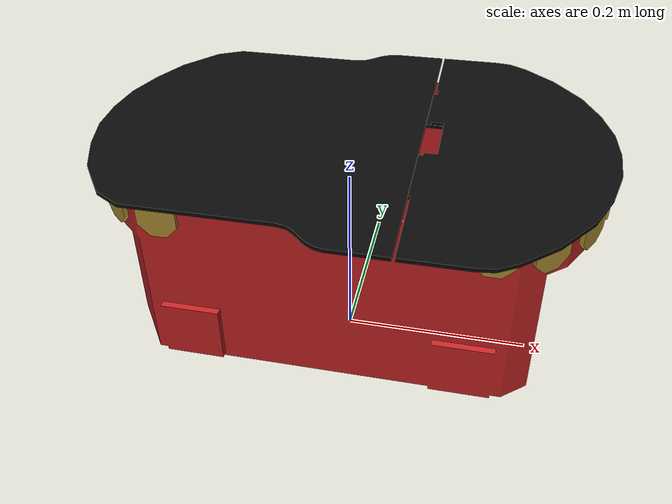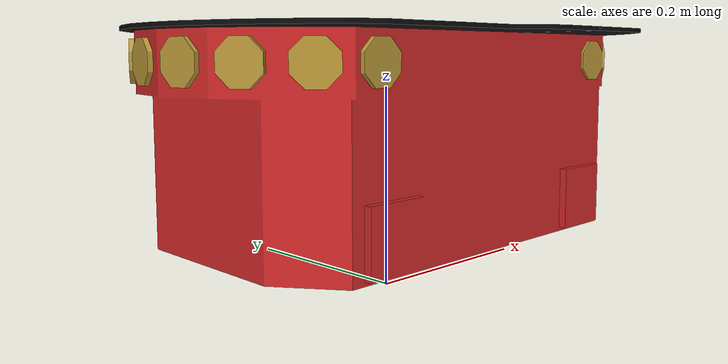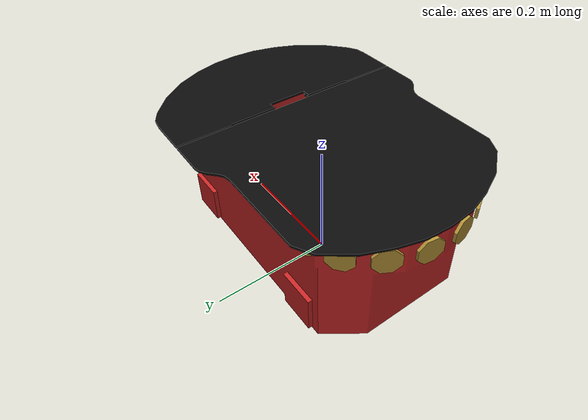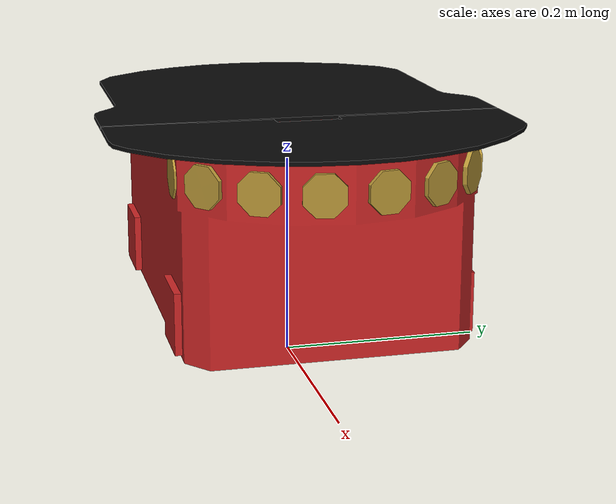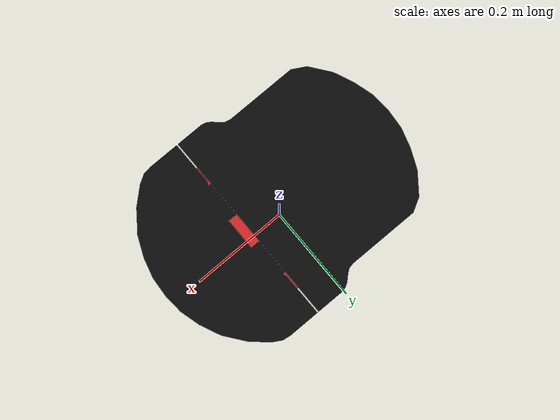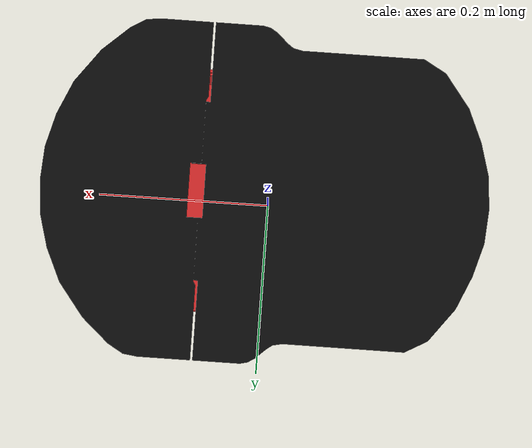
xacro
<?xml version="1.0"?>

<robot xmlns:sensor="http://playerstage.sourceforge.net/gazebo/xmlschema/#sensor"
       xmlns:controller="http://playerstage.sourceforge.net/gazebo/xmlschema/#controller"
       xmlns:interface="http://playerstage.sourceforge.net/gazebo/xmlschema/#interface"
       xmlns:xacro="http://www.ros.org/wiki/xacro">

	<link name="base_link"/>

<!-- Chassis -->
	<link name="chassis">
		<inertial>
			<mass value="20.0"/>
			<origin xyz="0 0 -0.090"/>
			<inertia ixx="0.3338" ixy="0.0" ixz="0.0"
				 iyy="0.4783" iyz="0.0"
				 izz="0.3338"/>
		</inertial>
		<visual>
			<origin xyz="0 0 0.0" rpy="0 0 0"/>
			<geometry name="pioneer_geom">
				<mesh filename="package://p3at_tutorial/meshes/chassis.dae"/>
			</geometry>
			<material name="ChassisRed" />
		</visual>
		<collision>
			<origin xyz="0 0 0.0" rpy="0 0 0"/>
				<geometry>
					<mesh filename="package://p3at_tutorial/meshes/chassis.dae"/>
				</geometry>
		</collision>
	</link>
	<gazebo reference="chassis">
		<material value="Gazebo/Red"/>
	</gazebo>
	<joint name="base_chassis_joint" type="fixed">
		<origin xyz="0.00 0 0.177" rpy="0 0 0"/>
		<parent link="base_link"/>
		<child link="chassis"/>
	</joint>

<!-- Top -->
	<link name="top_plate">
		<inertial>
			<mass value="0.1"/>
			<origin xyz="-0.025 0 -0.223"/>
			<inertia ixx="1.0" ixy="0.0" ixz="0.0"
				 iyy="1.0" iyz="0.0"
 				izz="1.0"/>
		</inertial>
		<visual>
			<origin xyz="0 0 0" rpy="0 0 0"/>
			<geometry name="pioneer_geom">
				<mesh filename="package://p3at_tutorial/meshes/top.dae"/>
			</geometry>
			<material name="TopBlack">
					<color rgba="0.038 0.038 0.038 1.0"/>
			</material>
		</visual>
		<collision>
			<origin xyz="0 0 0" rpy="0 0 0"/>
			<geometry>
				<box size="0 0 0"/>
			</geometry>
		</collision>
	</link>
	<gazebo reference="top_plate">
		<material value="Gazebo/Black"/>
	</gazebo>

	<joint name="chassis_top_joint" type="fixed">
		<origin xyz="0.043 0 0.254" rpy="0 0 0"/>
		<parent link="base_link"/>
		<child link="top_plate"/>
	</joint>
<!-- Front + Back Sonar -->
	<link name="front_sonar">
		<inertial>
			<mass value="0.1"/>
			<origin xyz="0 0 0"/>
			<inertia ixx="1.0" ixy="0.0" ixz="0.0"
				 iyy="1.0" iyz="0.0" izz="1.0"/>
		</inertial>
		<visual name="front_sonar_visual">
			<origin xyz="0 0 0" rpy="0 0 0"/>
			<geometry name="pioneer_geom">
				<mesh filename="package://p3at_tutorial/meshes/front_sonar.dae"/>
			</geometry>
			<material name="SonarYellow">
				<color rgba="0.715 0.583 0.210 1.0"/>
			</material>
		</visual>
		<collision>
			<origin xyz="0 0 0" rpy="0 0 0"/>
			<geometry>
				<box size="0 0 0"/>
			</geometry>
		</collision>
	</link>
	<gazebo reference="front_sonar">
		<material value="Gazebo/Yellow"/>
	</gazebo>

	<joint name="base_front_joint" type="fixed">
		<origin xyz="0.193 0 0.226" rpy="0 0 0"/>
		<parent link="base_link"/>
		<child link="front_sonar"/>
	</joint>

	<link name="back_sonar">
		<inertial>
			<mass value="0.1"/>
			<origin xyz="0 0 0"/>
			<inertia ixx="1.0" ixy="0.0" ixz="0.0"
				 iyy="1.0" iyz="0.0" izz="1.0"/>
		</inertial>
		<visual name="back_sonar_visual">
			<origin xyz="0 0 0" rpy="0 0 0"/>
			<geometry name="pioneer_geom">
				<mesh filename="package://p3at_tutorial/meshes/back_sonar.dae"/>
			</geometry>
			<material name="SonarYellow">
				<color rgba="0.715 0.583 0.210 1.0"/>
			</material>
		</visual>
		<collision>
			<origin xyz="0 0 0" rpy="0 0 0"/>
			<geometry>
				<box size="0 0 0"/>
			</geometry>
		</collision>
	</link>
	<gazebo reference="back_sonar">
		<material value="Gazebo/Yellow"/>
	</gazebo>

	<joint name="base_back_joint" type="fixed">
		<origin xyz="-0.193 0 0.226" rpy="0 0 0"/>
		<parent link="base_link"/>
		<child link="back_sonar"/>
	</joint>

<!-- Front Axles + Wheels + Hubcaps -->
<xacro:macro name="p3at_front" params="suffix reflect">
	<link name="p3at_front_${suffix}_axle">
		<inertial>
			<mass value="0.1"/>
			<origin xyz="0 0 0"/>
			<inertia ixx="1.0" ixy="0.0" ixz="0.0"
				 iyy="1.0" iyz="0.0" izz="1.0"/>
  	 	</inertial>
	<visual>
		<origin xyz="0 0 0" rpy="0 0 0"/>
		<geometry name="pioneer_geom">
			<mesh filename="package://p3at_tutorial/meshes/axle.dae"/>
		</geometry>
		<material name="AxleGrey">
			<color rgba="0.5 0.5 0.5 1"/>
		</material>
	</visual>
	<collision>
		<origin xyz="0 0 0" rpy="0 0 0"/>
		<geometry>
			<box size="0 0 0"/>
		</geometry>
	</collision>
	</link>
	<gazebo reference="p3at_front_${suffix}_axle">
		<material value="Gazebo/Grey"/>
	</gazebo>

	<joint name="base_front_${suffix}_axle_joint" type="fixed">
		<origin xyz="0.135 ${reflect*0.156} 0.111" rpy="0 0 0"/>
		<parent link="base_link"/>
		<child link="p3at_front_${suffix}_axle"/>
	</joint>

	<link name="p3at_front_${suffix}_hub">
		<inertial>
			<mass value="0.1"/>
			<origin xyz="0 0 0"/>
			<inertia ixx="1.0" ixy="0.0" ixz="0.0"
				 iyy="1.0" iyz="0.0" izz="1.0"/>
  	 	</inertial>
	<visual>
		<origin xyz="0 0 0" rpy="0 0 0"/>
		<geometry name="pioneer_geom">
			<mesh filename="package://p3at_tutorial/meshes/${suffix}_hubcap.dae"/>
		</geometry>
		<material name="HubcapYellow">
			<color rgba="1.0 0.811 0.151 1.0"/>
		</material>
	</visual>
	<collision>
		<origin xyz="0 0 0" rpy="0 0 0"/>
		<geometry>
			<box size="0 0 0"/>
		</geometry>
	</collision>
	</link>
	<gazebo reference="p3at_front_${suffix}_hub">
		<material value="Gazebo/Yellow"/>
	</gazebo>

	<joint name="base_front_${suffix}_hub_joint" type="fixed">
		<origin xyz="0 ${reflect*0.041} 0" rpy="0 0 0"/>
		<parent link="p3at_front_${suffix}_axle"/>
		<child link="p3at_front_${suffix}_hub"/>
	</joint>

	<link name="p3at_front_${suffix}_wheel">
		<inertial>
			<mass value="0.5"/>
			<origin xyz="0 0 0"/>
			<inertia ixx="0.012411765597" ixy="0" ixz="0"
         iyy="0.015218160428" iyz="0" izz="0.011763977943"/>
      </inertial>
	<visual>
		<origin xyz="0 0 0" rpy="0 0 0"/>
		<geometry name="pioneer_geom">
			<mesh filename="package://p3at_tutorial/meshes/wheel.dae"/>
		</geometry>
		<material name="WheelBlack">
			<color rgba="0.117 0.117 0.117 1"/>
		</material>
	</visual>
	<collision>
		<origin xyz="0 0 0" rpy="${-3.1415927/2} 0 0"/>
		<geometry>
	    <!--mesh filename="package://p3at_tutorial/meshes/wheel.dae"/-->
	    <cylinder radius="0.110" length="0.035"/>
		</geometry>
	</collision>
	</link>
	<gazebo reference="p3at_front_${suffix}_wheel">
		<material value="Gazebo/Black"/>
	</gazebo>

	<joint name="p3at_front_${suffix}_wheel_joint" type="continuous">
  	<axis xyz="0 1 0"/>
    <anchor xyz="0 0 0"/>
    <limit effort="100" velocity="100" />
    <joint_properties damping="0.7"/>
		<origin xyz="0 0 0" rpy="0 0 0"/>
		<parent link="p3at_front_${suffix}_hub"/>
		<child link="p3at_front_${suffix}_wheel"/>
	</joint>
</xacro:macro>
<!-- Back Axles + Wheels + Hubcaps -->
<xacro:macro name="p3at_back" params="suffix reflect">
	<link name="p3at_back_${suffix}_axle">
		<inertial>
			<mass value="0.1"/>
			<origin xyz="0 0 0"/>
			<inertia ixx="1.0" ixy="0.0" ixz="0.0"
				 iyy="1.0" iyz="0.0" izz="1.0"/>
  	 	</inertial>
	<visual>
		<origin xyz="0 0 0" rpy="0 0 0"/>
		<geometry name="pioneer_geom">
			<mesh filename="package://p3at_tutorial/meshes/axle.dae"/>
		</geometry>
		<material name="AxleGrey">
			<color rgba="0.5 0.5 0.5 1"/>
		</material>
	</visual>
	<collision>
		<origin xyz="0 0 0" rpy="0 0 0"/>
		<geometry>
			<mesh filename="package://p3at_tutorial/meshes/axle.dae"/>
		</geometry>
	</collision>
	</link>
	<gazebo reference="p3at_back_${suffix}_axle">
		<material value="Gazebo/Grey"/>
	</gazebo>

	<joint name="bp3at_back_${suffix}_axle_joint" type="fixed">
		<origin xyz="-0.134 ${reflect*0.156} 0.111" rpy="0 0 0"/>
		<parent link="base_link"/>
		<child link="p3at_back_${suffix}_axle"/>
	</joint>

	<link name="p3at_back_${suffix}_hub">
		<inertial>
			<mass value="0.1"/>
			<origin xyz="0 0 0"/>
			<inertia ixx="1.0" ixy="0.0" ixz="0.0"
				 iyy="1.0" iyz="0.0" izz="1.0"/>
  	 	</inertial>
	<visual>
		<origin xyz="0 0 0" rpy="0 0 0"/>
		<geometry name="pioneer_geom">
			<mesh filename="package://p3at_tutorial/meshes/${suffix}_hubcap.dae"/>
		</geometry>
		<material name="HubcapYellow"/>
	</visual>
	<collision>
		<origin xyz="0 0 0" rpy="0 0 0"/>
		<geometry>
			<mesh filename="package://p3at_tutorial/meshes/${suffix}_hubcap.dae"/>
		</geometry>
	</collision>
	</link>
	<gazebo reference="p3at_back_${suffix}_hub">
		<material value="Gazebo/Yellow"/>
	</gazebo>

	<joint name="p3at_back_${suffix}_hub_joint" type="fixed">
		<origin xyz="-0 ${reflect*0.041} 0" rpy="0 0 0"/>
		<parent link="p3at_back_${suffix}_axle"/>
		<child link="p3at_back_${suffix}_hub"/>
	</joint>

	<link name="p3at_back_${suffix}_wheel">
		<inertial>
			<mass value="0.5"/>
			<origin xyz="0 0 0"/>
			<inertia ixx="0.012411765597" ixy="0" ixz="0"
         iyy="0.015218160428" iyz="0" izz="0.011763977943"/>
      </inertial>
	<visual>
		<origin xyz="0 0 0" rpy="0 0 0"/>
		<geometry name="pioneer_geom">
			<mesh filename="package://p3at_tutorial/meshes/wheel.dae"/>
		</geometry>
		<material name="WheelBlack"/>
	</visual>
	<collision>
		<origin xyz="0 0 0" rpy="${-3.1415927/2} 0 0"/>
		<geometry>
	    <!--mesh filename="package://p3at_tutorial/meshes/wheel.dae"/-->
	    <cylinder radius="0.110" length="0.035"/>
		</geometry>
	</collision>
	</link>
	<gazebo reference="p3at_back_${suffix}_wheel">
		<material value="Gazebo/Black"/>
	</gazebo>

	<joint name="p3at_back_${suffix}_wheel_joint" type="continuous">
	  <axis xyz="0 1 0"/>
    <anchor xyz="0 0 0"/>
    <limit effort="100" velocity="100" />
    <joint_properties damping="0.7"/>
		<origin xyz="0 0 0" rpy="0 0 0"/>
		<parent link="p3at_back_${suffix}_hub"/>
		<child link="p3at_back_${suffix}_wheel"/>
	</joint>

  <gazebo reference="p3at_back_${suffix}_wheel">
    <kp>1000000.0</kp> <!-- kp and kd for rubber -->
    <kd>100.0</kd>
    <mu1>10.0</mu1>
    <mu2>1.0</mu2>
    <fdir1>1 0 0</fdir1> <!-- is this correct? -->
    <maxVel>1.0</maxVel>
    <minDepth>0.00</minDepth>
  </gazebo>

  <gazebo reference="p3at_front_${suffix}_wheel">
    <kp>1000000.0</kp> <!-- kp and kd for rubber -->
    <kd>100.0</kd>
    <mu1>10.0</mu1>
    <mu2>1.0</mu2>
    <fdir1>1 0 0</fdir1> <!-- is this correct? -->
    <maxVel>1.0</maxVel>
    <minDepth>0.00</minDepth>
  </gazebo>

</xacro:macro>

<xacro:macro name="p3at_gazebo_ext">

<gazebo>
    <plugin name="joint_state_publisher" filename="libgazebo_ros_joint_state_publisher.so">
      <robotNamespace></robotNamespace>
      <jointName>p3at_front_left_wheel_joint, p3at_front_right_wheel_joint, p3at_back_left_wheel_joint, p3at_back_right_wheel_joint</jointName>
      <updateRate>10.0</updateRate>
      <alwaysOn>true</alwaysOn>
    </plugin>
</gazebo>

<gazebo>
  <plugin name="skid_steer_drive_controller" filename="libgazebo_ros_skid_steer_drive.so">
    <updateRate>50.0</updateRate>
    <leftFrontJoint>p3at_front_left_wheel_joint</leftFrontJoint>
    <rightFrontJoint>p3at_front_right_wheel_joint</rightFrontJoint>
    <leftRearJoint>p3at_back_left_wheel_joint</leftRearJoint>
    <rightRearJoint>p3at_back_right_wheel_joint</rightRearJoint>
    <odometryTopic>pose</odometryTopic>
    <wheelSeparation>0.4</wheelSeparation>
    <wheelDiameter>0.220</wheelDiameter>
    <covariance_x>0.0000</covariance_x>
    <covariance_y>0.0000</covariance_y>
    <covariance_yaw>0.0000</covariance_yaw>
    <robotBaseFrame>base_link</robotBaseFrame>
    <commandTopic>cmd_vel</commandTopic>
    <odometryFrame>odom</odometryFrame>
    <broadcastTF>1</broadcastTF>
    <wheel_accel>1.8</wheel_accel>
    <torque>5</torque>
    <topicName>cmd_vel</topicName>
    <alpha1>0.000</alpha1>
    <alpha2>0.00000</alpha2>
    <alpha3>0.00000</alpha3>
    <alpha4>0.000</alpha4>
  </plugin>
</gazebo>

  <!-- Hokuyo Laser -->
  <joint name="hokuyo_joint" type="fixed">
    <axis xyz="0 1 0" />
    <origin xyz="0.150 0 0.037" rpy="0 0 0"/>
    <parent link="top_plate"/>
    <child link="hokuyo_link"/>
  </joint>
  <link name="hokuyo_link">
    <collision>
      <origin xyz="0 0 0" rpy="0 0 0"/>
      <geometry>
    <box size="0.01 0.01 0.01"/>
      </geometry>
    </collision>
    <visual>
      <origin xyz="0 0 0" rpy="0 0 0"/>
      <geometry>
        <mesh filename="package://p3at_tutorial/meshes/hokuyo1.dae"/>
      </geometry>
    </visual>
    <inertial>
      <mass value="1e-5" />
      <origin xyz="0 0 0" rpy="0 0 0"/>
      <inertia ixx="1e-6" ixy="0" ixz="0" iyy="1e-6" iyz="0" izz="1e-6" />
    </inertial>
  </link>
<gazebo reference="hokuyo_link">
    <sensor type="ray" name="head_hokuyo_sensor">
      <pose>0 0 0 0 0 0</pose>
      <visualize>true</visualize>
      <update_rate>40</update_rate>
      <ray>
        <scan>
          <horizontal>
            <samples>1080</samples>
            <resolution>1</resolution>
            <min_angle>-2.3559777</min_angle>
            <max_angle>2.3559777</max_angle>
          </horizontal>
        </scan>
        <range>
          <min>0.10</min>
          <max>30.0</max>
          <resolution>0.01</resolution>
        </range>
        <noise>
          <type>gaussian</type>
          <mean>0.0</mean>
          <stddev>0.01</stddev>
        </noise>
      </ray>
      <plugin name="gazebo_ros_head_hokuyo_controller" filename="libgazebo_ros_laser.so">
        <topicName>/hokuyo_scan</topicName>
        <frameName>hokuyo_link</frameName>
      </plugin>
    </sensor>
</gazebo>

<gazebo reference="front_sonar">
    <sensor type="ray" name="front_sonar_sensor">
      <pose>0 0 0 0 0 0</pose>
      <visualize>false</visualize>
      <update_rate>25</update_rate>
      <ray>
        <scan>
          <horizontal>
            <samples>8</samples>
            <resolution>1</resolution>
            <min_angle>-1.570796</min_angle>
            <max_angle>1.570796</max_angle>
          </horizontal>
        </scan>
        <range>
          <min>0.10</min>
          <max>5.0</max>
          <resolution>0.1</resolution>
        </range>
        <noise>
          <type>gaussian</type>
          <mean>0.0</mean>
          <stddev>0.1</stddev>
        </noise>
      </ray>
      <plugin name="gazebo_ros_front_sonar_controller" filename="libgazebo_ros_laser.so">
        <topicName>/front_sonar_raw</topicName>
        <frameName>front_sonar</frameName>
      </plugin>
    </sensor>
</gazebo>

<gazebo reference="back_sonar_fake">
    <sensor type="ray" name="back_sonar_sensor">
      <pose>0 0 0 0 0 0</pose>
      <visualize>false</visualize>
      <update_rate>25</update_rate>
      <ray>
        <scan>
          <horizontal>
            <samples>8</samples>
            <resolution>1</resolution>
            <min_angle>-1.570796</min_angle>
            <max_angle>1.570796</max_angle>
          </horizontal>
        </scan>
        <range>
          <min>0.10</min>
          <max>5.0</max>
          <resolution>0.1</resolution>
        </range>
        <noise>
          <type>gaussian</type>
          <mean>0.0</mean>
          <stddev>0.1</stddev>
        </noise>
      </ray>
      <plugin name="gazebo_ros_back_sonar_controller" filename="libgazebo_ros_laser.so">
        <topicName>/back_sonar_raw</topicName>
        <frameName>back_sonar_fake</frameName>
      </plugin>
    </sensor>
</gazebo>

<gazebo>
    <plugin name="imu_controller" filename="libhector_gazebo_ros_imu.so">
        <robotNamespace>/</robotNamespace>
        <updateRate>50.0</updateRate>
        <bodyName>imu</bodyName>
        <topicName>imu/data_raw</topicName>
        <accelDrift>0.05 0.05 0.05</accelDrift>
        <accelGaussianNoise>0.05 0.05 0.05</accelGaussianNoise>
        <rateDrift>0.05 0.05 0.05 </rateDrift>
        <rateGaussianNoise>0.05 0.05 0.05 </rateGaussianNoise>
        <headingDrift>0.05</headingDrift>
        <headingGaussianNoise>0.05</headingGaussianNoise>
    </plugin>
</gazebo>
</xacro:macro>

</robot>
